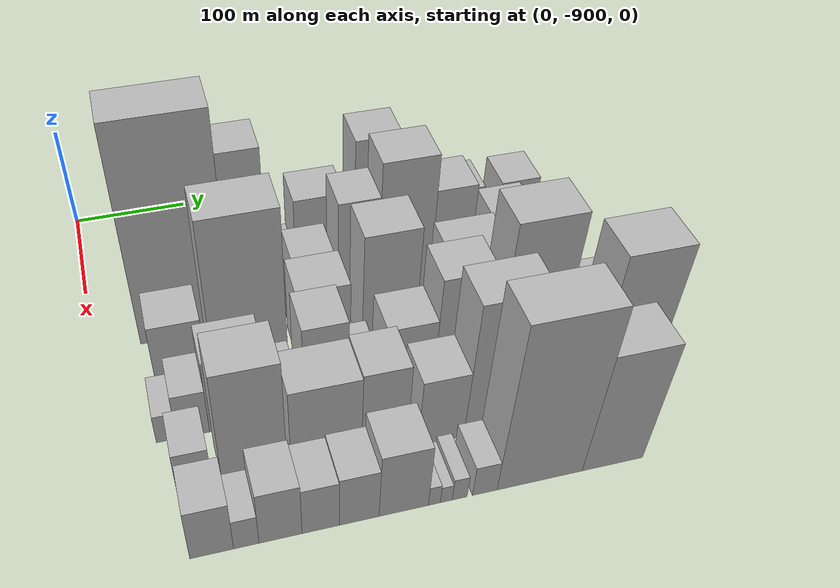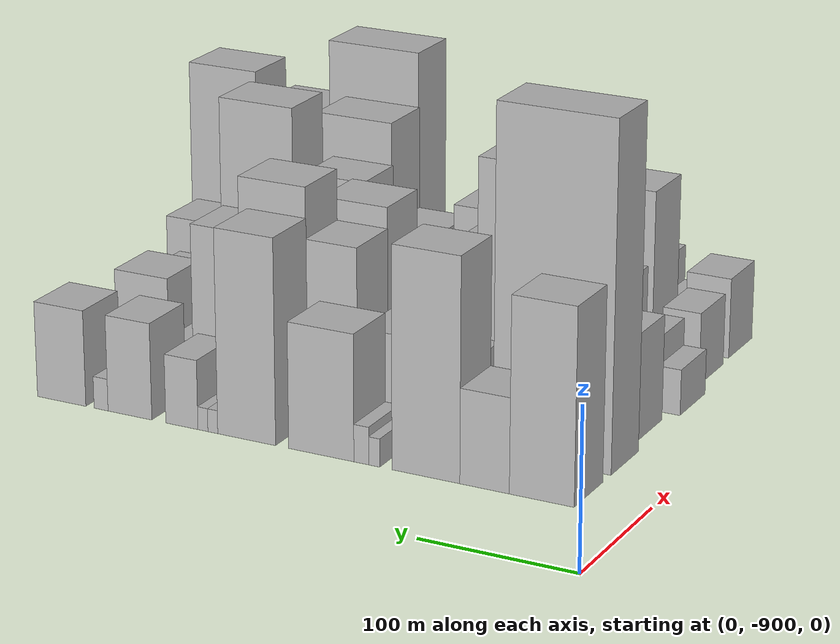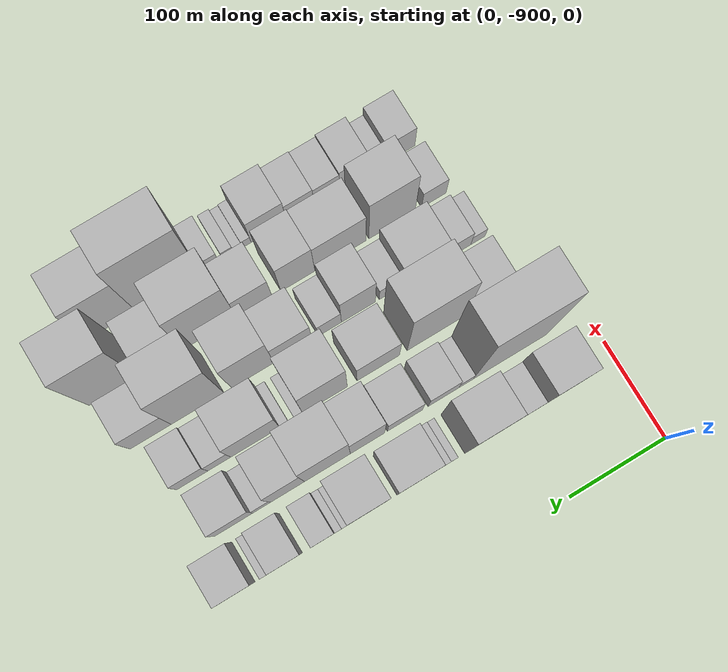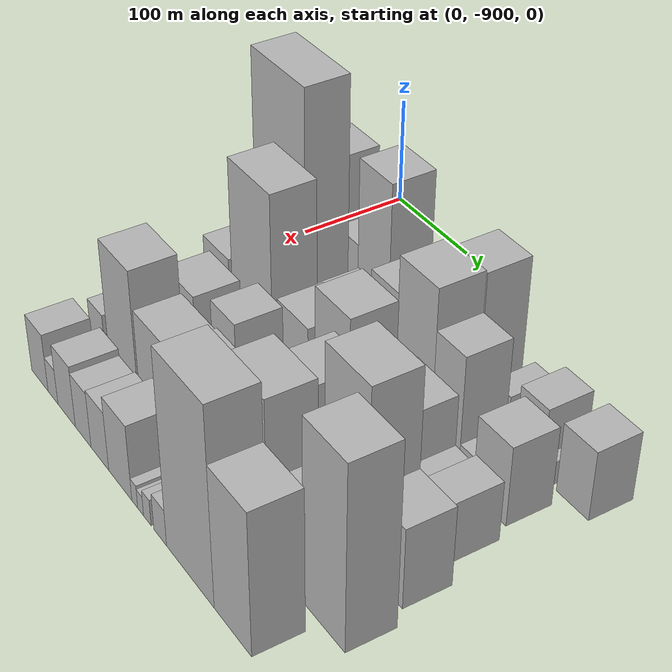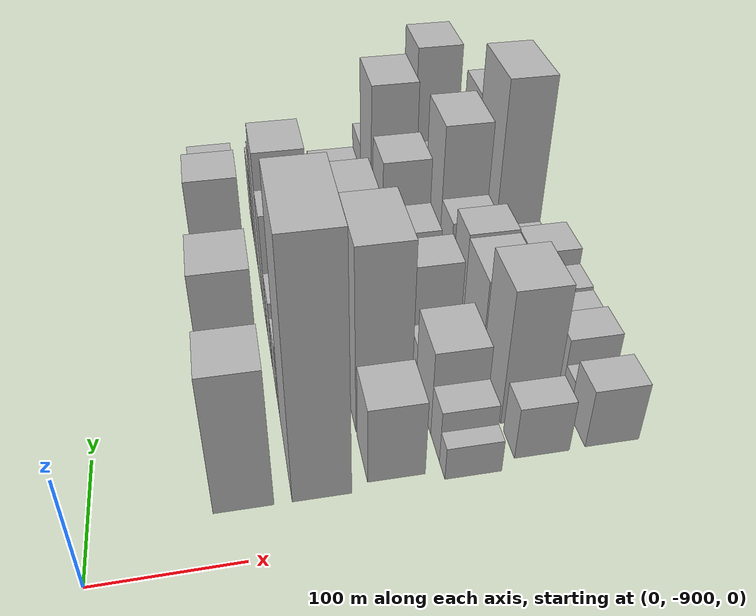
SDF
<sdf version="1.6">
 <world name="default">
  <model name="building_1">
   <static>1</static>
   <pose>100.0000 -839.3449 0 0.000000 0.000000 0.000000</pose>
   <link name="link">
    <pose>0 0 61.50 0 0 0</pose>
    <collision name="collision"><geometry><box><size>40.0000 41.3102 123.0000</size></box></geometry></collision>
    <visual name="visual">
     <cast_shadows>0</cast_shadows>
     <geometry><box><size>40.0000 41.3102 123.0000</size></box></geometry>
     <material>
      <script>
       <uri>model://HANNAS_wall/materials/scripts</uri>
       <uri>model://HANNAS_wall/materials/textures</uri>
       <name>vrc/HANNAS_wall</name>
      </script>
     </material>
    </visual>
   </link>
  </model>
  <model name="building_2">
   <static>1</static>
   <pose>100.0000 -802.6627 0 0.000000 0.000000 0.000000</pose>
   <link name="link">
    <pose>0 0 30.00 0 0 0</pose>
    <collision name="collision"><geometry><box><size>40.0000 32.0543 60.0000</size></box></geometry></collision>
    <visual name="visual">
     <cast_shadows>0</cast_shadows>
     <geometry><box><size>40.0000 32.0543 60.0000</size></box></geometry>
     <material>
      <script>
       <uri>model://HANNAS_wall/materials/scripts</uri>
       <uri>model://HANNAS_wall/materials/textures</uri>
       <name>vrc/HANNAS_wall</name>
      </script>
     </material>
    </visual>
   </link>
  </model>
  <model name="building_3">
   <static>1</static>
   <pose>100.0000 -764.2436 0 0.000000 0.000000 0.000000</pose>
   <link name="link">
    <pose>0 0 70.50 0 0 0</pose>
    <collision name="collision"><geometry><box><size>40.0000 44.7839 141.0000</size></box></geometry></collision>
    <visual name="visual">
     <cast_shadows>0</cast_shadows>
     <geometry><box><size>40.0000 44.7839 141.0000</size></box></geometry>
     <material>
      <script>
       <uri>model://HANNAS_wall/materials/scripts</uri>
       <uri>model://HANNAS_wall/materials/textures</uri>
       <name>vrc/HANNAS_wall</name>
      </script>
     </material>
    </visual>
   </link>
  </model>
  <model name="building_4">
   <static>1</static>
   <pose>100.0000 -730.1055 0 0.000000 0.000000 0.000000</pose>
   <link name="link">
    <pose>0 0 9.00 0 0 0</pose>
    <collision name="collision"><geometry><box><size>40.0000 7.4922 18.0000</size></box></geometry></collision>
    <visual name="visual">
     <cast_shadows>0</cast_shadows>
     <geometry><box><size>40.0000 7.4922 18.0000</size></box></geometry>
     <material>
      <script>
       <uri>model://HANNAS_wall/materials/scripts</uri>
       <uri>model://HANNAS_wall/materials/textures</uri>
       <name>vrc/HANNAS_wall</name>
      </script>
     </material>
    </visual>
   </link>
  </model>
  <model name="building_5">
   <static>1</static>
   <pose>100.0000 -721.3910 0 0.000000 0.000000 0.000000</pose>
   <link name="link">
    <pose>0 0 12.00 0 0 0</pose>
    <collision name="collision"><geometry><box><size>40.0000 9.9369 24.0000</size></box></geometry></collision>
    <visual name="visual">
     <cast_shadows>0</cast_shadows>
     <geometry><box><size>40.0000 9.9369 24.0000</size></box></geometry>
     <material>
      <script>
       <uri>model://HANNAS_wall/materials/scripts</uri>
       <uri>model://HANNAS_wall/materials/textures</uri>
       <name>vrc/HANNAS_wall</name>
      </script>
     </material>
    </visual>
   </link>
  </model>
  <model name="building_6">
   <static>1</static>
   <pose>100.0000 -694.2377 0 0.000000 0.000000 0.000000</pose>
   <link name="link">
    <pose>0 0 40.50 0 0 0</pose>
    <collision name="collision"><geometry><box><size>40.0000 44.3697 81.0000</size></box></geometry></collision>
    <visual name="visual">
     <cast_shadows>0</cast_shadows>
     <geometry><box><size>40.0000 44.3697 81.0000</size></box></geometry>
     <material>
      <script>
       <uri>model://HANNAS_wall/materials/scripts</uri>
       <uri>model://HANNAS_wall/materials/textures</uri>
       <name>vrc/HANNAS_wall</name>
      </script>
     </material>
    </visual>
   </link>
  </model>
  <model name="building_7">
   <static>1</static>
   <pose>100.0000 -642.8778 0 0.000000 0.000000 0.000000</pose>
   <link name="link">
    <pose>0 0 66.00 0 0 0</pose>
    <collision name="collision"><geometry><box><size>40.0000 40.3500 132.0000</size></box></geometry></collision>
    <visual name="visual">
     <cast_shadows>0</cast_shadows>
     <geometry><box><size>40.0000 40.3500 132.0000</size></box></geometry>
     <material>
      <script>
       <uri>model://HANNAS_wall/materials/scripts</uri>
       <uri>model://HANNAS_wall/materials/textures</uri>
       <name>vrc/HANNAS_wall</name>
      </script>
     </material>
    </visual>
   </link>
  </model>
  <model name="building_8">
   <static>1</static>
   <pose>100.0000 -619.2397 0 0.000000 0.000000 0.000000</pose>
   <link name="link">
    <pose>0 0 7.50 0 0 0</pose>
    <collision name="collision"><geometry><box><size>40.0000 6.9262 15.0000</size></box></geometry></collision>
    <visual name="visual">
     <cast_shadows>0</cast_shadows>
     <geometry><box><size>40.0000 6.9262 15.0000</size></box></geometry>
     <material>
      <script>
       <uri>model://HANNAS_wall/materials/scripts</uri>
       <uri>model://HANNAS_wall/materials/textures</uri>
       <name>vrc/HANNAS_wall</name>
      </script>
     </material>
    </visual>
   </link>
  </model>
  <model name="building_9">
   <static>1</static>
   <pose>100.0000 -612.2614 0 0.000000 0.000000 0.000000</pose>
   <link name="link">
    <pose>0 0 7.50 0 0 0</pose>
    <collision name="collision"><geometry><box><size>40.0000 7.0304 15.0000</size></box></geometry></collision>
    <visual name="visual">
     <cast_shadows>0</cast_shadows>
     <geometry><box><size>40.0000 7.0304 15.0000</size></box></geometry>
     <material>
      <script>
       <uri>model://HANNAS_wall/materials/scripts</uri>
       <uri>model://HANNAS_wall/materials/textures</uri>
       <name>vrc/HANNAS_wall</name>
      </script>
     </material>
    </visual>
   </link>
  </model>
  <model name="building_10">
   <static>1</static>
   <pose>100.0000 -597.3132 0 0.000000 0.000000 0.000000</pose>
   <link name="link">
    <pose>0 0 22.50 0 0 0</pose>
    <collision name="collision"><geometry><box><size>40.0000 22.8660 45.0000</size></box></geometry></collision>
    <visual name="visual">
     <cast_shadows>0</cast_shadows>
     <geometry><box><size>40.0000 22.8660 45.0000</size></box></geometry>
     <material>
      <script>
       <uri>model://HANNAS_wall/materials/scripts</uri>
       <uri>model://HANNAS_wall/materials/textures</uri>
       <name>vrc/HANNAS_wall</name>
      </script>
     </material>
    </visual>
   </link>
  </model>
  <model name="building_11">
   <static>1</static>
   <pose>100.0000 -560.0543 0 0.000000 0.000000 0.000000</pose>
   <link name="link">
    <pose>0 0 31.50 0 0 0</pose>
    <collision name="collision"><geometry><box><size>40.0000 31.6517 63.0000</size></box></geometry></collision>
    <visual name="visual">
     <cast_shadows>0</cast_shadows>
     <geometry><box><size>40.0000 31.6517 63.0000</size></box></geometry>
     <material>
      <script>
       <uri>model://HANNAS_wall/materials/scripts</uri>
       <uri>model://HANNAS_wall/materials/textures</uri>
       <name>vrc/HANNAS_wall</name>
      </script>
     </material>
    </visual>
   </link>
  </model>
  <model name="building_12">
   <static>1</static>
   <pose>100.0000 -539.1166 0 0.000000 0.000000 0.000000</pose>
   <link name="link">
    <pose>0 0 10.50 0 0 0</pose>
    <collision name="collision"><geometry><box><size>40.0000 10.2237 21.0000</size></box></geometry></collision>
    <visual name="visual">
     <cast_shadows>0</cast_shadows>
     <geometry><box><size>40.0000 10.2237 21.0000</size></box></geometry>
     <material>
      <script>
       <uri>model://HANNAS_wall/materials/scripts</uri>
       <uri>model://HANNAS_wall/materials/textures</uri>
       <name>vrc/HANNAS_wall</name>
      </script>
     </material>
    </visual>
   </link>
  </model>
  <model name="building_13">
   <static>1</static>
   <pose>100.0000 -510.1576 0 0.000000 0.000000 0.000000</pose>
   <link name="link">
    <pose>0 0 31.50 0 0 0</pose>
    <collision name="collision"><geometry><box><size>40.0000 35.6943 63.0000</size></box></geometry></collision>
    <visual name="visual">
     <cast_shadows>0</cast_shadows>
     <geometry><box><size>40.0000 35.6943 63.0000</size></box></geometry>
     <material>
      <script>
       <uri>model://HANNAS_wall/materials/scripts</uri>
       <uri>model://HANNAS_wall/materials/textures</uri>
       <name>vrc/HANNAS_wall</name>
      </script>
     </material>
    </visual>
   </link>
  </model>
  <model name="building_53">
   <static>1</static>
   <pose>152.0000 -821.4381 0 0.000000 0.000000 0.000000</pose>
   <link name="link">
    <pose>0 0 109.50 0 0 0</pose>
    <collision name="collision"><geometry><box><size>40.0000 77.1237 219.0000</size></box></geometry></collision>
    <visual name="visual">
     <cast_shadows>0</cast_shadows>
     <geometry><box><size>40.0000 77.1237 219.0000</size></box></geometry>
     <material>
      <script>
       <uri>model://HANNAS_wall/materials/scripts</uri>
       <uri>model://HANNAS_wall/materials/textures</uri>
       <name>vrc/HANNAS_wall</name>
      </script>
     </material>
    </visual>
   </link>
  </model>
  <model name="building_54">
   <static>1</static>
   <pose>152.0000 -775.1746 0 0.000000 0.000000 0.000000</pose>
   <link name="link">
    <pose>0 0 15.00 0 0 0</pose>
    <collision name="collision"><geometry><box><size>40.0000 15.4034 30.0000</size></box></geometry></collision>
    <visual name="visual">
     <cast_shadows>0</cast_shadows>
     <geometry><box><size>40.0000 15.4034 30.0000</size></box></geometry>
     <material>
      <script>
       <uri>model://HANNAS_wall/materials/scripts</uri>
       <uri>model://HANNAS_wall/materials/textures</uri>
       <name>vrc/HANNAS_wall</name>
      </script>
     </material>
    </visual>
   </link>
  </model>
  <model name="building_55">
   <static>1</static>
   <pose>152.0000 -751.7304 0 0.000000 0.000000 0.000000</pose>
   <link name="link">
    <pose>0 0 27.00 0 0 0</pose>
    <collision name="collision"><geometry><box><size>40.0000 31.4849 54.0000</size></box></geometry></collision>
    <visual name="visual">
     <cast_shadows>0</cast_shadows>
     <geometry><box><size>40.0000 31.4849 54.0000</size></box></geometry>
     <material>
      <script>
       <uri>model://HANNAS_wall/materials/scripts</uri>
       <uri>model://HANNAS_wall/materials/textures</uri>
       <name>vrc/HANNAS_wall</name>
      </script>
     </material>
    </visual>
   </link>
  </model>
  <model name="building_56">
   <static>1</static>
   <pose>152.0000 -711.9460 0 0.000000 0.000000 0.000000</pose>
   <link name="link">
    <pose>0 0 31.50 0 0 0</pose>
    <collision name="collision"><geometry><box><size>40.0000 36.0840 63.0000</size></box></geometry></collision>
    <visual name="visual">
     <cast_shadows>0</cast_shadows>
     <geometry><box><size>40.0000 36.0840 63.0000</size></box></geometry>
     <material>
      <script>
       <uri>model://HANNAS_wall/materials/scripts</uri>
       <uri>model://HANNAS_wall/materials/textures</uri>
       <name>vrc/HANNAS_wall</name>
      </script>
     </material>
    </visual>
   </link>
  </model>
  <model name="building_57">
   <static>1</static>
   <pose>152.0000 -673.3839 0 0.000000 0.000000 0.000000</pose>
   <link name="link">
    <pose>0 0 57.00 0 0 0</pose>
    <collision name="collision"><geometry><box><size>40.0000 35.0401 114.0000</size></box></geometry></collision>
    <visual name="visual">
     <cast_shadows>0</cast_shadows>
     <geometry><box><size>40.0000 35.0401 114.0000</size></box></geometry>
     <material>
      <script>
       <uri>model://HANNAS_wall/materials/scripts</uri>
       <uri>model://HANNAS_wall/materials/textures</uri>
       <name>vrc/HANNAS_wall</name>
      </script>
     </material>
    </visual>
   </link>
  </model>
  <model name="building_58">
   <static>1</static>
   <pose>152.0000 -632.5312 0 0.000000 0.000000 0.000000</pose>
   <link name="link">
    <pose>0 0 73.50 0 0 0</pose>
    <collision name="collision"><geometry><box><size>40.0000 46.6653 147.0000</size></box></geometry></collision>
    <visual name="visual">
     <cast_shadows>0</cast_shadows>
     <geometry><box><size>40.0000 46.6653 147.0000</size></box></geometry>
     <material>
      <script>
       <uri>model://HANNAS_wall/materials/scripts</uri>
       <uri>model://HANNAS_wall/materials/textures</uri>
       <name>vrc/HANNAS_wall</name>
      </script>
     </material>
    </visual>
   </link>
  </model>
  <model name="building_59">
   <static>1</static>
   <pose>152.0000 -591.9203 0 0.000000 0.000000 0.000000</pose>
   <link name="link">
    <pose>0 0 55.50 0 0 0</pose>
    <collision name="collision"><geometry><box><size>40.0000 34.5565 111.0000</size></box></geometry></collision>
    <visual name="visual">
     <cast_shadows>0</cast_shadows>
     <geometry><box><size>40.0000 34.5565 111.0000</size></box></geometry>
     <material>
      <script>
       <uri>model://HANNAS_wall/materials/scripts</uri>
       <uri>model://HANNAS_wall/materials/textures</uri>
       <name>vrc/HANNAS_wall</name>
      </script>
     </material>
    </visual>
   </link>
  </model>
  <model name="building_60">
   <static>1</static>
   <pose>152.0000 -565.8311 0 0.000000 0.000000 0.000000</pose>
   <link name="link">
    <pose>0 0 16.50 0 0 0</pose>
    <collision name="collision"><geometry><box><size>40.0000 17.6219 33.0000</size></box></geometry></collision>
    <visual name="visual">
     <cast_shadows>0</cast_shadows>
     <geometry><box><size>40.0000 17.6219 33.0000</size></box></geometry>
     <material>
      <script>
       <uri>model://HANNAS_wall/materials/scripts</uri>
       <uri>model://HANNAS_wall/materials/textures</uri>
       <name>vrc/HANNAS_wall</name>
      </script>
     </material>
    </visual>
   </link>
  </model>
  <model name="building_61">
   <static>1</static>
   <pose>152.0000 -537.6572 0 0.000000 0.000000 0.000000</pose>
   <link name="link">
    <pose>0 0 36.00 0 0 0</pose>
    <collision name="collision"><geometry><box><size>40.0000 38.7258 72.0000</size></box></geometry></collision>
    <visual name="visual">
     <cast_shadows>0</cast_shadows>
     <geometry><box><size>40.0000 38.7258 72.0000</size></box></geometry>
     <material>
      <script>
       <uri>model://HANNAS_wall/materials/scripts</uri>
       <uri>model://HANNAS_wall/materials/textures</uri>
       <name>vrc/HANNAS_wall</name>
      </script>
     </material>
    </visual>
   </link>
  </model>
  <model name="building_107">
   <static>1</static>
   <pose>204.0000 -832.5941 0 0.000000 0.000000 0.000000</pose>
   <link name="link">
    <pose>0 0 34.50 0 0 0</pose>
    <collision name="collision"><geometry><box><size>40.0000 40.8118 69.0000</size></box></geometry></collision>
    <visual name="visual">
     <cast_shadows>0</cast_shadows>
     <geometry><box><size>40.0000 40.8118 69.0000</size></box></geometry>
     <material>
      <script>
       <uri>model://HANNAS_wall/materials/scripts</uri>
       <uri>model://HANNAS_wall/materials/textures</uri>
       <name>vrc/HANNAS_wall</name>
      </script>
     </material>
    </visual>
   </link>
  </model>
  <model name="building_108">
   <static>1</static>
   <pose>204.0000 -776.6867 0 0.000000 0.000000 0.000000</pose>
   <link name="link">
    <pose>0 0 82.50 0 0 0</pose>
    <collision name="collision"><geometry><box><size>40.0000 61.0030 165.0000</size></box></geometry></collision>
    <visual name="visual">
     <cast_shadows>0</cast_shadows>
     <geometry><box><size>40.0000 61.0030 165.0000</size></box></geometry>
     <material>
      <script>
       <uri>model://HANNAS_wall/materials/scripts</uri>
       <uri>model://HANNAS_wall/materials/textures</uri>
       <name>vrc/HANNAS_wall</name>
      </script>
     </material>
    </visual>
   </link>
  </model>
  <model name="building_109">
   <static>1</static>
   <pose>204.0000 -716.2288 0 0.000000 0.000000 0.000000</pose>
   <link name="link">
    <pose>0 0 39.00 0 0 0</pose>
    <collision name="collision"><geometry><box><size>40.0000 43.9129 78.0000</size></box></geometry></collision>
    <visual name="visual">
     <cast_shadows>0</cast_shadows>
     <geometry><box><size>40.0000 43.9129 78.0000</size></box></geometry>
     <material>
      <script>
       <uri>model://HANNAS_wall/materials/scripts</uri>
       <uri>model://HANNAS_wall/materials/textures</uri>
       <name>vrc/HANNAS_wall</name>
      </script>
     </material>
    </visual>
   </link>
  </model>
  <model name="building_110">
   <static>1</static>
   <pose>204.0000 -661.3765 0 0.000000 0.000000 0.000000</pose>
   <link name="link">
    <pose>0 0 61.50 0 0 0</pose>
    <collision name="collision"><geometry><box><size>40.0000 45.7917 123.0000</size></box></geometry></collision>
    <visual name="visual">
     <cast_shadows>0</cast_shadows>
     <geometry><box><size>40.0000 45.7917 123.0000</size></box></geometry>
     <material>
      <script>
       <uri>model://HANNAS_wall/materials/scripts</uri>
       <uri>model://HANNAS_wall/materials/textures</uri>
       <name>vrc/HANNAS_wall</name>
      </script>
     </material>
    </visual>
   </link>
  </model>
  <model name="building_111">
   <static>1</static>
   <pose>204.0000 -634.2412 0 0.000000 0.000000 0.000000</pose>
   <link name="link">
    <pose>0 0 9.00 0 0 0</pose>
    <collision name="collision"><geometry><box><size>40.0000 8.4790 18.0000</size></box></geometry></collision>
    <visual name="visual">
     <cast_shadows>0</cast_shadows>
     <geometry><box><size>40.0000 8.4790 18.0000</size></box></geometry>
     <material>
      <script>
       <uri>model://HANNAS_wall/materials/scripts</uri>
       <uri>model://HANNAS_wall/materials/textures</uri>
       <name>vrc/HANNAS_wall</name>
      </script>
     </material>
    </visual>
   </link>
  </model>
  <model name="building_112">
   <static>1</static>
   <pose>204.0000 -619.5519 0 0.000000 0.000000 0.000000</pose>
   <link name="link">
    <pose>0 0 9.00 0 0 0</pose>
    <collision name="collision"><geometry><box><size>40.0000 8.8997 18.0000</size></box></geometry></collision>
    <visual name="visual">
     <cast_shadows>0</cast_shadows>
     <geometry><box><size>40.0000 8.8997 18.0000</size></box></geometry>
     <material>
      <script>
       <uri>model://HANNAS_wall/materials/scripts</uri>
       <uri>model://HANNAS_wall/materials/textures</uri>
       <name>vrc/HANNAS_wall</name>
      </script>
     </material>
    </visual>
   </link>
  </model>
  <model name="building_113">
   <static>1</static>
   <pose>204.0000 -589.9599 0 0.000000 0.000000 0.000000</pose>
   <link name="link">
    <pose>0 0 45.00 0 0 0</pose>
    <collision name="collision"><geometry><box><size>40.0000 50.2842 90.0000</size></box></geometry></collision>
    <visual name="visual">
     <cast_shadows>0</cast_shadows>
     <geometry><box><size>40.0000 50.2842 90.0000</size></box></geometry>
     <material>
      <script>
       <uri>model://HANNAS_wall/materials/scripts</uri>
       <uri>model://HANNAS_wall/materials/textures</uri>
       <name>vrc/HANNAS_wall</name>
      </script>
     </material>
    </visual>
   </link>
  </model>
  <model name="building_114">
   <static>1</static>
   <pose>204.0000 -553.2080 0 0.000000 0.000000 0.000000</pose>
   <link name="link">
    <pose>0 0 22.50 0 0 0</pose>
    <collision name="collision"><geometry><box><size>40.0000 23.2197 45.0000</size></box></geometry></collision>
    <visual name="visual">
     <cast_shadows>0</cast_shadows>
     <geometry><box><size>40.0000 23.2197 45.0000</size></box></geometry>
     <material>
      <script>
       <uri>model://HANNAS_wall/materials/scripts</uri>
       <uri>model://HANNAS_wall/materials/textures</uri>
       <name>vrc/HANNAS_wall</name>
      </script>
     </material>
    </visual>
   </link>
  </model>
  <model name="building_115">
   <static>1</static>
   <pose>204.0000 -525.7951 0 0.000000 0.000000 0.000000</pose>
   <link name="link">
    <pose>0 0 27.00 0 0 0</pose>
    <collision name="collision"><geometry><box><size>40.0000 31.6062 54.0000</size></box></geometry></collision>
    <visual name="visual">
     <cast_shadows>0</cast_shadows>
     <geometry><box><size>40.0000 31.6062 54.0000</size></box></geometry>
     <material>
      <script>
       <uri>model://HANNAS_wall/materials/scripts</uri>
       <uri>model://HANNAS_wall/materials/textures</uri>
       <name>vrc/HANNAS_wall</name>
      </script>
     </material>
    </visual>
   </link>
  </model>
  <model name="building_159">
   <static>1</static>
   <pose>256.0000 -852.3828 0 0.000000 0.000000 0.000000</pose>
   <link name="link">
    <pose>0 0 15.00 0 0 0</pose>
    <collision name="collision"><geometry><box><size>40.0000 15.2344 30.0000</size></box></geometry></collision>
    <visual name="visual">
     <cast_shadows>0</cast_shadows>
     <geometry><box><size>40.0000 15.2344 30.0000</size></box></geometry>
     <material>
      <script>
       <uri>model://HANNAS_wall/materials/scripts</uri>
       <uri>model://HANNAS_wall/materials/textures</uri>
       <name>vrc/HANNAS_wall</name>
      </script>
     </material>
    </visual>
   </link>
  </model>
  <model name="building_160">
   <static>1</static>
   <pose>256.0000 -832.0287 0 0.000000 0.000000 0.000000</pose>
   <link name="link">
    <pose>0 0 24.00 0 0 0</pose>
    <collision name="collision"><geometry><box><size>40.0000 25.4738 48.0000</size></box></geometry></collision>
    <visual name="visual">
     <cast_shadows>0</cast_shadows>
     <geometry><box><size>40.0000 25.4738 48.0000</size></box></geometry>
     <material>
      <script>
       <uri>model://HANNAS_wall/materials/scripts</uri>
       <uri>model://HANNAS_wall/materials/textures</uri>
       <name>vrc/HANNAS_wall</name>
      </script>
     </material>
    </visual>
   </link>
  </model>
  <model name="building_161">
   <static>1</static>
   <pose>256.0000 -795.9737 0 0.000000 0.000000 0.000000</pose>
   <link name="link">
    <pose>0 0 39.00 0 0 0</pose>
    <collision name="collision"><geometry><box><size>40.0000 46.6363 78.0000</size></box></geometry></collision>
    <visual name="visual">
     <cast_shadows>0</cast_shadows>
     <geometry><box><size>40.0000 46.6363 78.0000</size></box></geometry>
     <material>
      <script>
       <uri>model://HANNAS_wall/materials/scripts</uri>
       <uri>model://HANNAS_wall/materials/textures</uri>
       <name>vrc/HANNAS_wall</name>
      </script>
     </material>
    </visual>
   </link>
  </model>
  <model name="building_162">
   <static>1</static>
   <pose>256.0000 -760.8113 0 0.000000 0.000000 0.000000</pose>
   <link name="link">
    <pose>0 0 21.00 0 0 0</pose>
    <collision name="collision"><geometry><box><size>40.0000 23.6886 42.0000</size></box></geometry></collision>
    <visual name="visual">
     <cast_shadows>0</cast_shadows>
     <geometry><box><size>40.0000 23.6886 42.0000</size></box></geometry>
     <material>
      <script>
       <uri>model://HANNAS_wall/materials/scripts</uri>
       <uri>model://HANNAS_wall/materials/textures</uri>
       <name>vrc/HANNAS_wall</name>
      </script>
     </material>
    </visual>
   </link>
  </model>
  <model name="building_163">
   <static>1</static>
   <pose>256.0000 -727.2818 0 0.000000 0.000000 0.000000</pose>
   <link name="link">
    <pose>0 0 46.50 0 0 0</pose>
    <collision name="collision"><geometry><box><size>40.0000 35.3704 93.0000</size></box></geometry></collision>
    <visual name="visual">
     <cast_shadows>0</cast_shadows>
     <geometry><box><size>40.0000 35.3704 93.0000</size></box></geometry>
     <material>
      <script>
       <uri>model://HANNAS_wall/materials/scripts</uri>
       <uri>model://HANNAS_wall/materials/textures</uri>
       <name>vrc/HANNAS_wall</name>
      </script>
     </material>
    </visual>
   </link>
  </model>
  <model name="building_164">
   <static>1</static>
   <pose>256.0000 -697.5599 0 0.000000 0.000000 0.000000</pose>
   <link name="link">
    <pose>0 0 24.00 0 0 0</pose>
    <collision name="collision"><geometry><box><size>40.0000 24.0734 48.0000</size></box></geometry></collision>
    <visual name="visual">
     <cast_shadows>0</cast_shadows>
     <geometry><box><size>40.0000 24.0734 48.0000</size></box></geometry>
     <material>
      <script>
       <uri>model://HANNAS_wall/materials/scripts</uri>
       <uri>model://HANNAS_wall/materials/textures</uri>
       <name>vrc/HANNAS_wall</name>
      </script>
     </material>
    </visual>
   </link>
  </model>
  <model name="building_165">
   <static>1</static>
   <pose>256.0000 -659.7514 0 0.000000 0.000000 0.000000</pose>
   <link name="link">
    <pose>0 0 37.50 0 0 0</pose>
    <collision name="collision"><geometry><box><size>40.0000 39.5436 75.0000</size></box></geometry></collision>
    <visual name="visual">
     <cast_shadows>0</cast_shadows>
     <geometry><box><size>40.0000 39.5436 75.0000</size></box></geometry>
     <material>
      <script>
       <uri>model://HANNAS_wall/materials/scripts</uri>
       <uri>model://HANNAS_wall/materials/textures</uri>
       <name>vrc/HANNAS_wall</name>
      </script>
     </material>
    </visual>
   </link>
  </model>
  <model name="building_166">
   <static>1</static>
   <pose>256.0000 -618.1975 0 0.000000 0.000000 0.000000</pose>
   <link name="link">
    <pose>0 0 58.50 0 0 0</pose>
    <collision name="collision"><geometry><box><size>40.0000 43.5642 117.0000</size></box></geometry></collision>
    <visual name="visual">
     <cast_shadows>0</cast_shadows>
     <geometry><box><size>40.0000 43.5642 117.0000</size></box></geometry>
     <material>
      <script>
       <uri>model://HANNAS_wall/materials/scripts</uri>
       <uri>model://HANNAS_wall/materials/textures</uri>
       <name>vrc/HANNAS_wall</name>
      </script>
     </material>
    </visual>
   </link>
  </model>
  <model name="building_167">
   <static>1</static>
   <pose>256.0000 -561.5431 0 0.000000 0.000000 0.000000</pose>
   <link name="link">
    <pose>0 0 79.50 0 0 0</pose>
    <collision name="collision"><geometry><box><size>40.0000 53.7446 159.0000</size></box></geometry></collision>
    <visual name="visual">
     <cast_shadows>0</cast_shadows>
     <geometry><box><size>40.0000 53.7446 159.0000</size></box></geometry>
     <material>
      <script>
       <uri>model://HANNAS_wall/materials/scripts</uri>
       <uri>model://HANNAS_wall/materials/textures</uri>
       <name>vrc/HANNAS_wall</name>
      </script>
     </material>
    </visual>
   </link>
  </model>
  <model name="building_168">
   <static>1</static>
   <pose>256.0000 -513.7282 0 0.000000 0.000000 0.000000</pose>
   <link name="link">
    <pose>0 0 36.00 0 0 0</pose>
    <collision name="collision"><geometry><box><size>40.0000 41.8852 72.0000</size></box></geometry></collision>
    <visual name="visual">
     <cast_shadows>0</cast_shadows>
     <geometry><box><size>40.0000 41.8852 72.0000</size></box></geometry>
     <material>
      <script>
       <uri>model://HANNAS_wall/materials/scripts</uri>
       <uri>model://HANNAS_wall/materials/textures</uri>
       <name>vrc/HANNAS_wall</name>
      </script>
     </material>
    </visual>
   </link>
  </model>
  <model name="building_210">
   <static>1</static>
   <pose>308.0000 -838.1214 0 0.000000 0.000000 0.000000</pose>
   <link name="link">
    <pose>0 0 24.00 0 0 0</pose>
    <collision name="collision"><geometry><box><size>40.0000 25.7572 48.0000</size></box></geometry></collision>
    <visual name="visual">
     <cast_shadows>0</cast_shadows>
     <geometry><box><size>40.0000 25.7572 48.0000</size></box></geometry>
     <material>
      <script>
       <uri>model://HANNAS_wall/materials/scripts</uri>
       <uri>model://HANNAS_wall/materials/textures</uri>
       <name>vrc/HANNAS_wall</name>
      </script>
     </material>
    </visual>
   </link>
  </model>
  <model name="building_211">
   <static>1</static>
   <pose>308.0000 -794.0444 0 0.000000 0.000000 0.000000</pose>
   <link name="link">
    <pose>0 0 61.50 0 0 0</pose>
    <collision name="collision"><geometry><box><size>40.0000 48.3967 123.0000</size></box></geometry></collision>
    <visual name="visual">
     <cast_shadows>0</cast_shadows>
     <geometry><box><size>40.0000 48.3967 123.0000</size></box></geometry>
     <material>
      <script>
       <uri>model://HANNAS_wall/materials/scripts</uri>
       <uri>model://HANNAS_wall/materials/textures</uri>
       <name>vrc/HANNAS_wall</name>
      </script>
     </material>
    </visual>
   </link>
  </model>
  <model name="building_212">
   <static>1</static>
   <pose>308.0000 -740.1064 0 0.000000 0.000000 0.000000</pose>
   <link name="link">
    <pose>0 0 45.00 0 0 0</pose>
    <collision name="collision"><geometry><box><size>40.0000 53.4794 90.0000</size></box></geometry></collision>
    <visual name="visual">
     <cast_shadows>0</cast_shadows>
     <geometry><box><size>40.0000 53.4794 90.0000</size></box></geometry>
     <material>
      <script>
       <uri>model://HANNAS_wall/materials/scripts</uri>
       <uri>model://HANNAS_wall/materials/textures</uri>
       <name>vrc/HANNAS_wall</name>
      </script>
     </material>
    </visual>
   </link>
  </model>
  <model name="building_213">
   <static>1</static>
   <pose>308.0000 -695.6628 0 0.000000 0.000000 0.000000</pose>
   <link name="link">
    <pose>0 0 46.50 0 0 0</pose>
    <collision name="collision"><geometry><box><size>40.0000 35.4077 93.0000</size></box></geometry></collision>
    <visual name="visual">
     <cast_shadows>0</cast_shadows>
     <geometry><box><size>40.0000 35.4077 93.0000</size></box></geometry>
     <material>
      <script>
       <uri>model://HANNAS_wall/materials/scripts</uri>
       <uri>model://HANNAS_wall/materials/textures</uri>
       <name>vrc/HANNAS_wall</name>
      </script>
     </material>
    </visual>
   </link>
  </model>
  <model name="building_214">
   <static>1</static>
   <pose>308.0000 -650.7137 0 0.000000 0.000000 0.000000</pose>
   <link name="link">
    <pose>0 0 36.00 0 0 0</pose>
    <collision name="collision"><geometry><box><size>40.0000 36.4905 72.0000</size></box></geometry></collision>
    <visual name="visual">
     <cast_shadows>0</cast_shadows>
     <geometry><box><size>40.0000 36.4905 72.0000</size></box></geometry>
     <material>
      <script>
       <uri>model://HANNAS_wall/materials/scripts</uri>
       <uri>model://HANNAS_wall/materials/textures</uri>
       <name>vrc/HANNAS_wall</name>
      </script>
     </material>
    </visual>
   </link>
  </model>
  <model name="building_215">
   <static>1</static>
   <pose>308.0000 -605.0298 0 0.000000 0.000000 0.000000</pose>
   <link name="link">
    <pose>0 0 70.50 0 0 0</pose>
    <collision name="collision"><geometry><box><size>40.0000 54.8774 141.0000</size></box></geometry></collision>
    <visual name="visual">
     <cast_shadows>0</cast_shadows>
     <geometry><box><size>40.0000 54.8774 141.0000</size></box></geometry>
     <material>
      <script>
       <uri>model://HANNAS_wall/materials/scripts</uri>
       <uri>model://HANNAS_wall/materials/textures</uri>
       <name>vrc/HANNAS_wall</name>
      </script>
     </material>
    </visual>
   </link>
  </model>
  <model name="building_216">
   <static>1</static>
   <pose>308.0000 -557.2529 0 0.000000 0.000000 0.000000</pose>
   <link name="link">
    <pose>0 0 36.00 0 0 0</pose>
    <collision name="collision"><geometry><box><size>40.0000 40.6764 72.0000</size></box></geometry></collision>
    <visual name="visual">
     <cast_shadows>0</cast_shadows>
     <geometry><box><size>40.0000 40.6764 72.0000</size></box></geometry>
     <material>
      <script>
       <uri>model://HANNAS_wall/materials/scripts</uri>
       <uri>model://HANNAS_wall/materials/textures</uri>
       <name>vrc/HANNAS_wall</name>
      </script>
     </material>
    </visual>
   </link>
  </model>
  <model name="building_217">
   <static>1</static>
   <pose>308.0000 -506.5385 0 0.000000 0.000000 0.000000</pose>
   <link name="link">
    <pose>0 0 81.00 0 0 0</pose>
    <collision name="collision"><geometry><box><size>40.0000 50.7523 162.0000</size></box></geometry></collision>
    <visual name="visual">
     <cast_shadows>0</cast_shadows>
     <geometry><box><size>40.0000 50.7523 162.0000</size></box></geometry>
     <material>
      <script>
       <uri>model://HANNAS_wall/materials/scripts</uri>
       <uri>model://HANNAS_wall/materials/textures</uri>
       <name>vrc/HANNAS_wall</name>
      </script>
     </material>
    </visual>
   </link>
  </model>
  <model name="building_262">
   <static>1</static>
   <pose>360.0000 -834.7603 0 0.000000 0.000000 0.000000</pose>
   <link name="link">
    <pose>0 0 27.00 0 0 0</pose>
    <collision name="collision"><geometry><box><size>40.0000 30.4794 54.0000</size></box></geometry></collision>
    <visual name="visual">
     <cast_shadows>0</cast_shadows>
     <geometry><box><size>40.0000 30.4794 54.0000</size></box></geometry>
     <material>
      <script>
       <uri>model://HANNAS_wall/materials/scripts</uri>
       <uri>model://HANNAS_wall/materials/textures</uri>
       <name>vrc/HANNAS_wall</name>
      </script>
     </material>
    </visual>
   </link>
  </model>
  <model name="building_263">
   <static>1</static>
   <pose>360.0000 -810.5995 0 0.000000 0.000000 0.000000</pose>
   <link name="link">
    <pose>0 0 16.50 0 0 0</pose>
    <collision name="collision"><geometry><box><size>40.0000 17.8423 33.0000</size></box></geometry></collision>
    <visual name="visual">
     <cast_shadows>0</cast_shadows>
     <geometry><box><size>40.0000 17.8423 33.0000</size></box></geometry>
     <material>
      <script>
       <uri>model://HANNAS_wall/materials/scripts</uri>
       <uri>model://HANNAS_wall/materials/textures</uri>
       <name>vrc/HANNAS_wall</name>
      </script>
     </material>
    </visual>
   </link>
  </model>
  <model name="building_264">
   <static>1</static>
   <pose>360.0000 -786.3015 0 0.000000 0.000000 0.000000</pose>
   <link name="link">
    <pose>0 0 28.50 0 0 0</pose>
    <collision name="collision"><geometry><box><size>40.0000 30.7537 57.0000</size></box></geometry></collision>
    <visual name="visual">
     <cast_shadows>0</cast_shadows>
     <geometry><box><size>40.0000 30.7537 57.0000</size></box></geometry>
     <material>
      <script>
       <uri>model://HANNAS_wall/materials/scripts</uri>
       <uri>model://HANNAS_wall/materials/textures</uri>
       <name>vrc/HANNAS_wall</name>
      </script>
     </material>
    </visual>
   </link>
  </model>
  <model name="building_265">
   <static>1</static>
   <pose>360.0000 -757.4429 0 0.000000 0.000000 0.000000</pose>
   <link name="link">
    <pose>0 0 25.50 0 0 0</pose>
    <collision name="collision"><geometry><box><size>40.0000 26.9636 51.0000</size></box></geometry></collision>
    <visual name="visual">
     <cast_shadows>0</cast_shadows>
     <geometry><box><size>40.0000 26.9636 51.0000</size></box></geometry>
     <material>
      <script>
       <uri>model://HANNAS_wall/materials/scripts</uri>
       <uri>model://HANNAS_wall/materials/textures</uri>
       <name>vrc/HANNAS_wall</name>
      </script>
     </material>
    </visual>
   </link>
  </model>
  <model name="building_266">
   <static>1</static>
   <pose>360.0000 -729.3390 0 0.000000 0.000000 0.000000</pose>
   <link name="link">
    <pose>0 0 27.00 0 0 0</pose>
    <collision name="collision"><geometry><box><size>40.0000 29.2441 54.0000</size></box></geometry></collision>
    <visual name="visual">
     <cast_shadows>0</cast_shadows>
     <geometry><box><size>40.0000 29.2441 54.0000</size></box></geometry>
     <material>
      <script>
       <uri>model://HANNAS_wall/materials/scripts</uri>
       <uri>model://HANNAS_wall/materials/textures</uri>
       <name>vrc/HANNAS_wall</name>
      </script>
     </material>
    </visual>
   </link>
  </model>
  <model name="building_267">
   <static>1</static>
   <pose>360.0000 -696.3349 0 0.000000 0.000000 0.000000</pose>
   <link name="link">
    <pose>0 0 34.50 0 0 0</pose>
    <collision name="collision"><geometry><box><size>40.0000 36.7641 69.0000</size></box></geometry></collision>
    <visual name="visual">
     <cast_shadows>0</cast_shadows>
     <geometry><box><size>40.0000 36.7641 69.0000</size></box></geometry>
     <material>
      <script>
       <uri>model://HANNAS_wall/materials/scripts</uri>
       <uri>model://HANNAS_wall/materials/textures</uri>
       <name>vrc/HANNAS_wall</name>
      </script>
     </material>
    </visual>
   </link>
  </model>
  <model name="building_268">
   <static>1</static>
   <pose>360.0000 -673.4080 0 0.000000 0.000000 0.000000</pose>
   <link name="link">
    <pose>0 0 10.50 0 0 0</pose>
    <collision name="collision"><geometry><box><size>40.0000 9.0897 21.0000</size></box></geometry></collision>
    <visual name="visual">
     <cast_shadows>0</cast_shadows>
     <geometry><box><size>40.0000 9.0897 21.0000</size></box></geometry>
     <material>
      <script>
       <uri>model://HANNAS_wall/materials/scripts</uri>
       <uri>model://HANNAS_wall/materials/textures</uri>
       <name>vrc/HANNAS_wall</name>
      </script>
     </material>
    </visual>
   </link>
  </model>
  <model name="building_269">
   <static>1</static>
   <pose>360.0000 -664.3793 0 0.000000 0.000000 0.000000</pose>
   <link name="link">
    <pose>0 0 9.00 0 0 0</pose>
    <collision name="collision"><geometry><box><size>40.0000 8.9677 18.0000</size></box></geometry></collision>
    <visual name="visual">
     <cast_shadows>0</cast_shadows>
     <geometry><box><size>40.0000 8.9677 18.0000</size></box></geometry>
     <material>
      <script>
       <uri>model://HANNAS_wall/materials/scripts</uri>
       <uri>model://HANNAS_wall/materials/textures</uri>
       <name>vrc/HANNAS_wall</name>
      </script>
     </material>
    </visual>
   </link>
  </model>
  <model name="building_270">
   <static>1</static>
   <pose>360.0000 -654.1628 0 0.000000 0.000000 0.000000</pose>
   <link name="link">
    <pose>0 0 12.00 0 0 0</pose>
    <collision name="collision"><geometry><box><size>40.0000 11.4653 24.0000</size></box></geometry></collision>
    <visual name="visual">
     <cast_shadows>0</cast_shadows>
     <geometry><box><size>40.0000 11.4653 24.0000</size></box></geometry>
     <material>
      <script>
       <uri>model://HANNAS_wall/materials/scripts</uri>
       <uri>model://HANNAS_wall/materials/textures</uri>
       <name>vrc/HANNAS_wall</name>
      </script>
     </material>
    </visual>
   </link>
  </model>
  <model name="building_271">
   <static>1</static>
   <pose>360.0000 -634.9600 0 0.000000 0.000000 0.000000</pose>
   <link name="link">
    <pose>0 0 16.50 0 0 0</pose>
    <collision name="collision"><geometry><box><size>40.0000 18.9404 33.0000</size></box></geometry></collision>
    <visual name="visual">
     <cast_shadows>0</cast_shadows>
     <geometry><box><size>40.0000 18.9404 33.0000</size></box></geometry>
     <material>
      <script>
       <uri>model://HANNAS_wall/materials/scripts</uri>
       <uri>model://HANNAS_wall/materials/textures</uri>
       <name>vrc/HANNAS_wall</name>
      </script>
     </material>
    </visual>
   </link>
  </model>
  <model name="building_272">
   <static>1</static>
   <pose>360.0000 -592.0100 0 0.000000 0.000000 0.000000</pose>
   <link name="link">
    <pose>0 0 87.00 0 0 0</pose>
    <collision name="collision"><geometry><box><size>40.0000 66.9595 174.0000</size></box></geometry></collision>
    <visual name="visual">
     <cast_shadows>0</cast_shadows>
     <geometry><box><size>40.0000 66.9595 174.0000</size></box></geometry>
     <material>
      <script>
       <uri>model://HANNAS_wall/materials/scripts</uri>
       <uri>model://HANNAS_wall/materials/textures</uri>
       <name>vrc/HANNAS_wall</name>
      </script>
     </material>
    </visual>
   </link>
  </model>
  <model name="building_273">
   <static>1</static>
   <pose>360.0000 -534.1410 0 0.000000 0.000000 0.000000</pose>
   <link name="link">
    <pose>0 0 63.00 0 0 0</pose>
    <collision name="collision"><geometry><box><size>40.0000 48.7787 126.0000</size></box></geometry></collision>
    <visual name="visual">
     <cast_shadows>0</cast_shadows>
     <geometry><box><size>40.0000 48.7787 126.0000</size></box></geometry>
     <material>
      <script>
       <uri>model://HANNAS_wall/materials/scripts</uri>
       <uri>model://HANNAS_wall/materials/textures</uri>
       <name>vrc/HANNAS_wall</name>
      </script>
     </material>
    </visual>
   </link>
  </model>
 </world>
</sdf>
